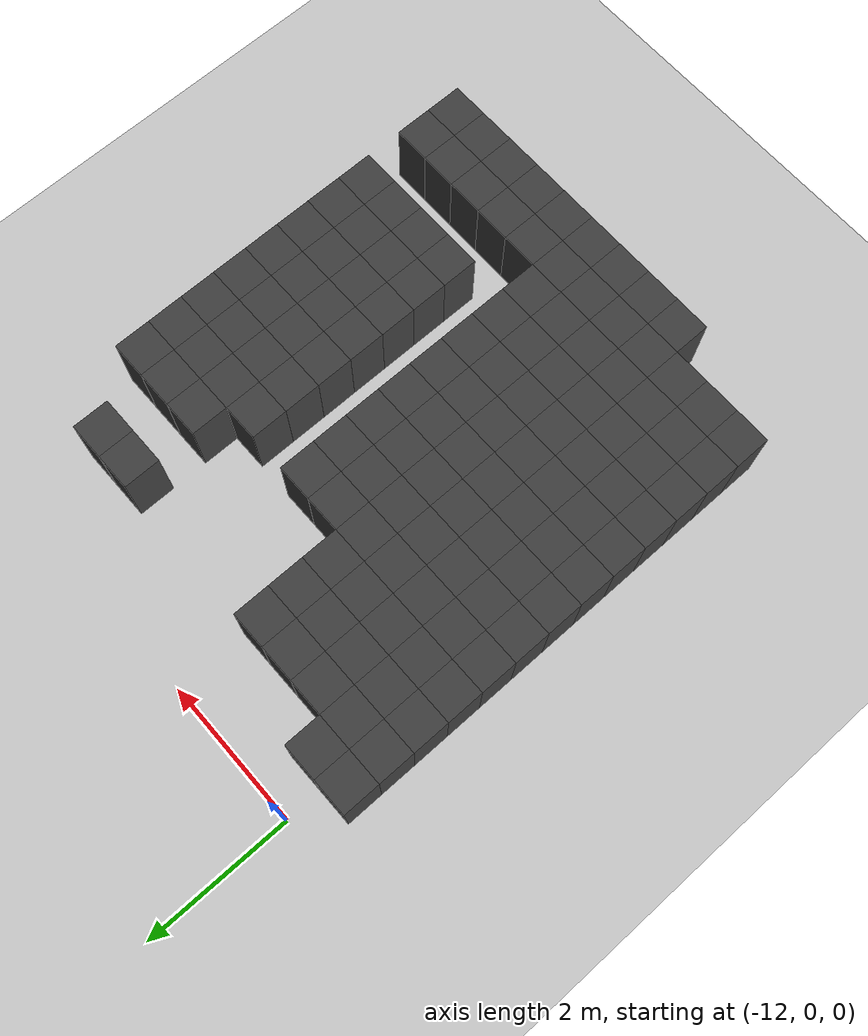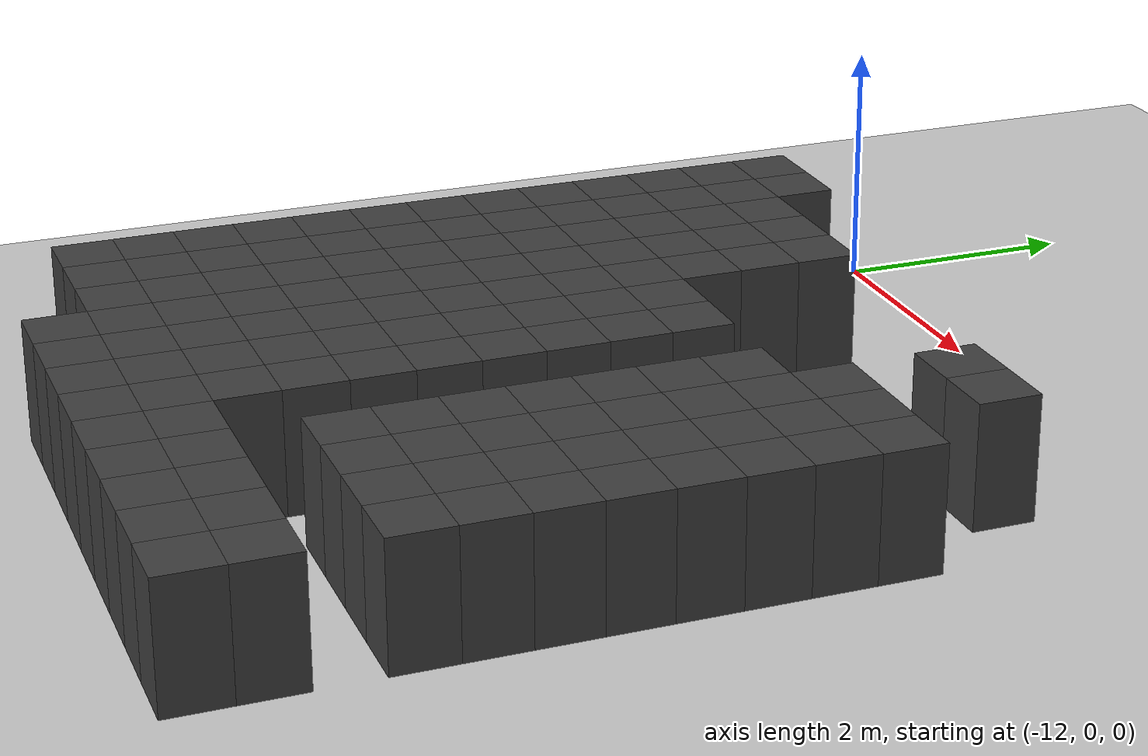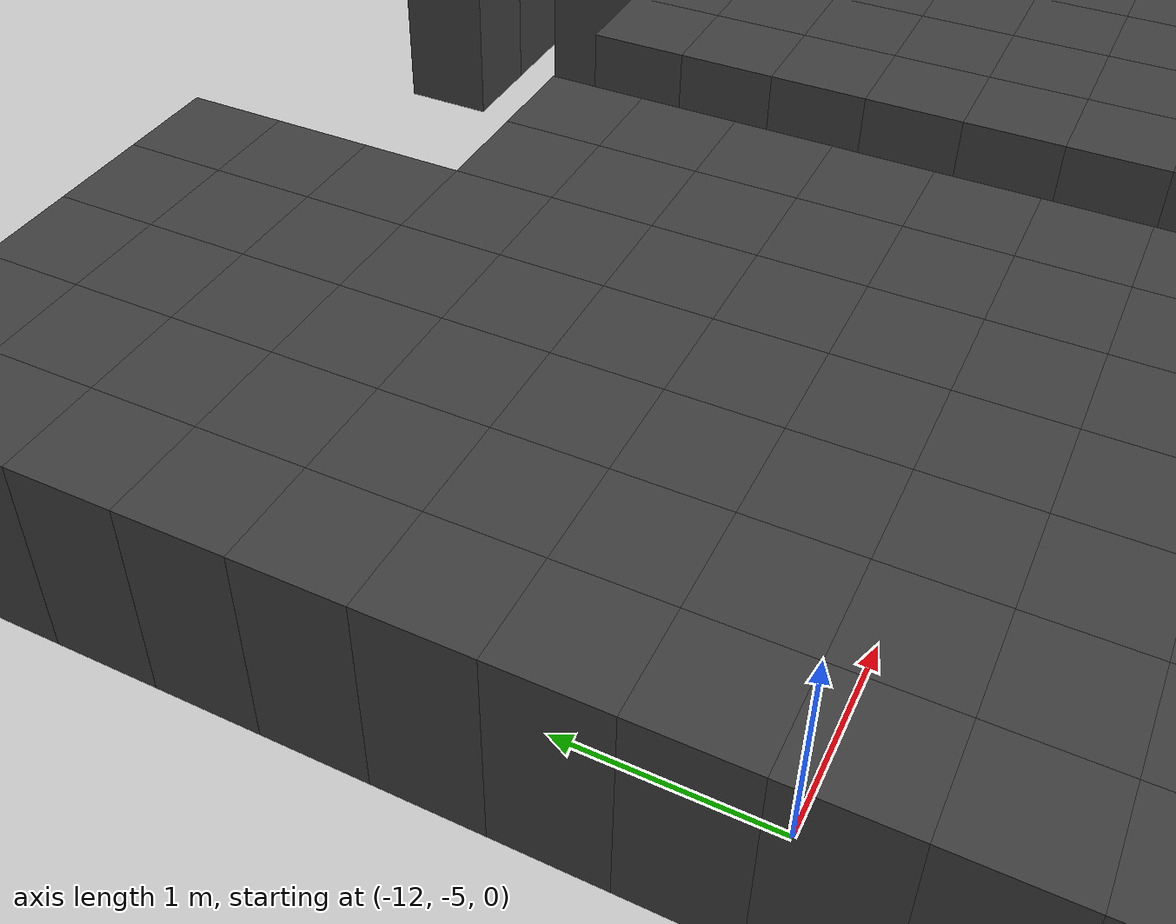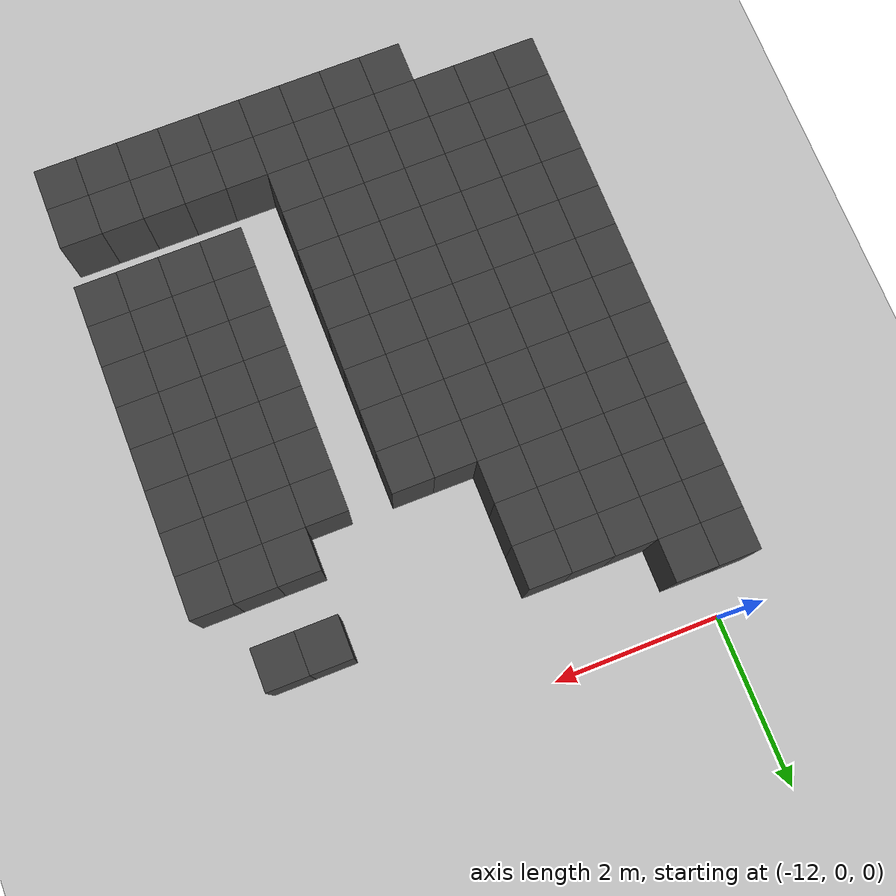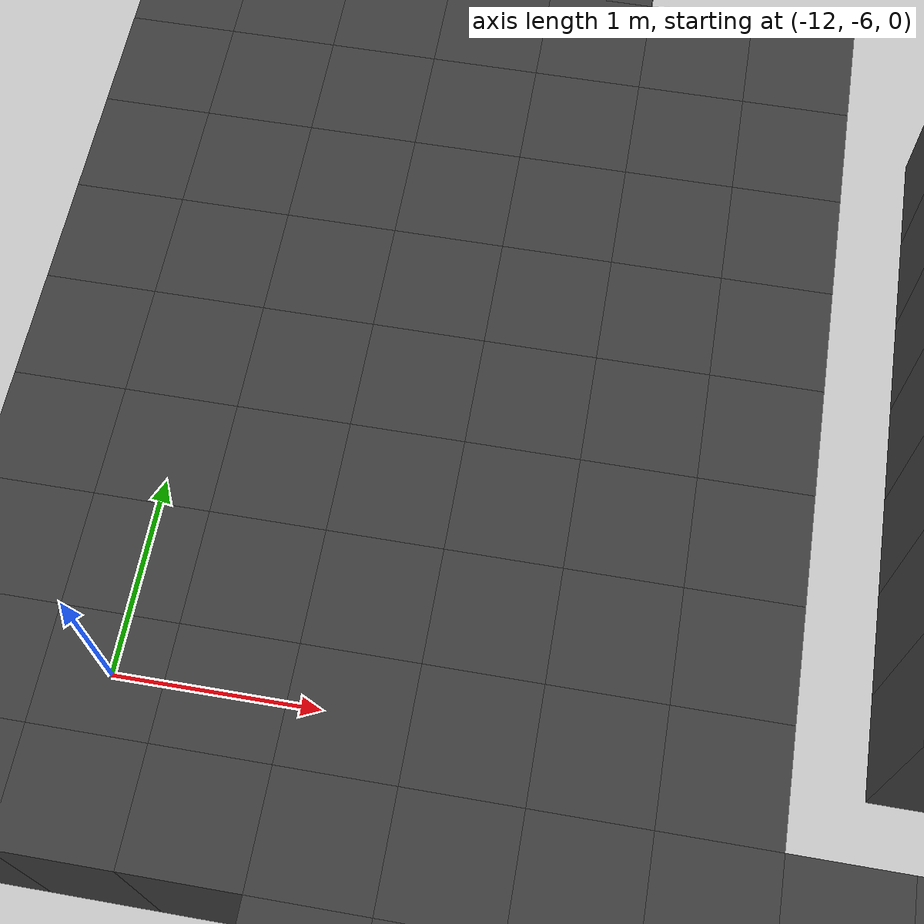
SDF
<sdf version="1.7">
 <world name="map_12356">
  <model name="ground_plane">
   <static>true</static>
   <link name="link">
    <collision name="collision">
     <geometry><plane><normal>0 0 1</normal><size>200 200</size></plane></geometry>
    </collision>
    <visual name="visual">
     <geometry><plane><normal>0 0 1</normal><size>200 200</size></plane></geometry>
     <material><ambient>0.8 0.8 0.8 1</ambient><diffuse>0.8 0.8 0.8 1</diffuse></material>
    </visual>
   </link>
  </model>
  <model name="maze_environment">
   <static>true</static>
   <link name="wall_1013">
    <pose>-12.250 -0.750 0.500 0 0 0</pose>
    <collision name="col"><geometry><box><size>0.5 0.5 1.0</size></box></geometry></collision>
    <visual name="vis">
     <geometry><box><size>0.5 0.5 1.0</size></box></geometry>
     <material><ambient>0.15 0.15 0.15 1</ambient><diffuse>0.25 0.25 0.25 1</diffuse></material>
    </visual>
   </link>
   <link name="wall_1014">
    <pose>-11.750 -0.750 0.500 0 0 0</pose>
    <collision name="col"><geometry><box><size>0.5 0.5 1.0</size></box></geometry></collision>
    <visual name="vis">
     <geometry><box><size>0.5 0.5 1.0</size></box></geometry>
     <material><ambient>0.15 0.15 0.15 1</ambient><diffuse>0.25 0.25 0.25 1</diffuse></material>
    </visual>
   </link>
   <link name="wall_1057">
    <pose>-12.250 -1.250 0.500 0 0 0</pose>
    <collision name="col"><geometry><box><size>0.5 0.5 1.0</size></box></geometry></collision>
    <visual name="vis">
     <geometry><box><size>0.5 0.5 1.0</size></box></geometry>
     <material><ambient>0.15 0.15 0.15 1</ambient><diffuse>0.25 0.25 0.25 1</diffuse></material>
    </visual>
   </link>
   <link name="wall_1058">
    <pose>-11.750 -1.250 0.500 0 0 0</pose>
    <collision name="col"><geometry><box><size>0.5 0.5 1.0</size></box></geometry></collision>
    <visual name="vis">
     <geometry><box><size>0.5 0.5 1.0</size></box></geometry>
     <material><ambient>0.15 0.15 0.15 1</ambient><diffuse>0.25 0.25 0.25 1</diffuse></material>
    </visual>
   </link>
   <link name="wall_1059">
    <pose>-11.250 -1.250 0.500 0 0 0</pose>
    <collision name="col"><geometry><box><size>0.5 0.5 1.0</size></box></geometry></collision>
    <visual name="vis">
     <geometry><box><size>0.5 0.5 1.0</size></box></geometry>
     <material><ambient>0.15 0.15 0.15 1</ambient><diffuse>0.25 0.25 0.25 1</diffuse></material>
    </visual>
   </link>
   <link name="wall_1060">
    <pose>-10.750 -1.250 0.500 0 0 0</pose>
    <collision name="col"><geometry><box><size>0.5 0.5 1.0</size></box></geometry></collision>
    <visual name="vis">
     <geometry><box><size>0.5 0.5 1.0</size></box></geometry>
     <material><ambient>0.15 0.15 0.15 1</ambient><diffuse>0.25 0.25 0.25 1</diffuse></material>
    </visual>
   </link>
   <link name="wall_1061">
    <pose>-10.250 -1.250 0.500 0 0 0</pose>
    <collision name="col"><geometry><box><size>0.5 0.5 1.0</size></box></geometry></collision>
    <visual name="vis">
     <geometry><box><size>0.5 0.5 1.0</size></box></geometry>
     <material><ambient>0.15 0.15 0.15 1</ambient><diffuse>0.25 0.25 0.25 1</diffuse></material>
    </visual>
   </link>
   <link name="wall_1062">
    <pose>-7.750 -1.250 0.500 0 0 0</pose>
    <collision name="col"><geometry><box><size>0.5 0.5 1.0</size></box></geometry></collision>
    <visual name="vis">
     <geometry><box><size>0.5 0.5 1.0</size></box></geometry>
     <material><ambient>0.15 0.15 0.15 1</ambient><diffuse>0.25 0.25 0.25 1</diffuse></material>
    </visual>
   </link>
   <link name="wall_1063">
    <pose>-7.250 -1.250 0.500 0 0 0</pose>
    <collision name="col"><geometry><box><size>0.5 0.5 1.0</size></box></geometry></collision>
    <visual name="vis">
     <geometry><box><size>0.5 0.5 1.0</size></box></geometry>
     <material><ambient>0.15 0.15 0.15 1</ambient><diffuse>0.25 0.25 0.25 1</diffuse></material>
    </visual>
   </link>
   <link name="wall_1101">
    <pose>-12.250 -1.750 0.500 0 0 0</pose>
    <collision name="col"><geometry><box><size>0.5 0.5 1.0</size></box></geometry></collision>
    <visual name="vis">
     <geometry><box><size>0.5 0.5 1.0</size></box></geometry>
     <material><ambient>0.15 0.15 0.15 1</ambient><diffuse>0.25 0.25 0.25 1</diffuse></material>
    </visual>
   </link>
   <link name="wall_1102">
    <pose>-11.750 -1.750 0.500 0 0 0</pose>
    <collision name="col"><geometry><box><size>0.5 0.5 1.0</size></box></geometry></collision>
    <visual name="vis">
     <geometry><box><size>0.5 0.5 1.0</size></box></geometry>
     <material><ambient>0.15 0.15 0.15 1</ambient><diffuse>0.25 0.25 0.25 1</diffuse></material>
    </visual>
   </link>
   <link name="wall_1103">
    <pose>-11.250 -1.750 0.500 0 0 0</pose>
    <collision name="col"><geometry><box><size>0.5 0.5 1.0</size></box></geometry></collision>
    <visual name="vis">
     <geometry><box><size>0.5 0.5 1.0</size></box></geometry>
     <material><ambient>0.15 0.15 0.15 1</ambient><diffuse>0.25 0.25 0.25 1</diffuse></material>
    </visual>
   </link>
   <link name="wall_1104">
    <pose>-10.750 -1.750 0.500 0 0 0</pose>
    <collision name="col"><geometry><box><size>0.5 0.5 1.0</size></box></geometry></collision>
    <visual name="vis">
     <geometry><box><size>0.5 0.5 1.0</size></box></geometry>
     <material><ambient>0.15 0.15 0.15 1</ambient><diffuse>0.25 0.25 0.25 1</diffuse></material>
    </visual>
   </link>
   <link name="wall_1105">
    <pose>-10.250 -1.750 0.500 0 0 0</pose>
    <collision name="col"><geometry><box><size>0.5 0.5 1.0</size></box></geometry></collision>
    <visual name="vis">
     <geometry><box><size>0.5 0.5 1.0</size></box></geometry>
     <material><ambient>0.15 0.15 0.15 1</ambient><diffuse>0.25 0.25 0.25 1</diffuse></material>
    </visual>
   </link>
   <link name="wall_1143">
    <pose>-12.250 -2.250 0.500 0 0 0</pose>
    <collision name="col"><geometry><box><size>0.5 0.5 1.0</size></box></geometry></collision>
    <visual name="vis">
     <geometry><box><size>0.5 0.5 1.0</size></box></geometry>
     <material><ambient>0.15 0.15 0.15 1</ambient><diffuse>0.25 0.25 0.25 1</diffuse></material>
    </visual>
   </link>
   <link name="wall_1144">
    <pose>-11.750 -2.250 0.500 0 0 0</pose>
    <collision name="col"><geometry><box><size>0.5 0.5 1.0</size></box></geometry></collision>
    <visual name="vis">
     <geometry><box><size>0.5 0.5 1.0</size></box></geometry>
     <material><ambient>0.15 0.15 0.15 1</ambient><diffuse>0.25 0.25 0.25 1</diffuse></material>
    </visual>
   </link>
   <link name="wall_1145">
    <pose>-11.250 -2.250 0.500 0 0 0</pose>
    <collision name="col"><geometry><box><size>0.5 0.5 1.0</size></box></geometry></collision>
    <visual name="vis">
     <geometry><box><size>0.5 0.5 1.0</size></box></geometry>
     <material><ambient>0.15 0.15 0.15 1</ambient><diffuse>0.25 0.25 0.25 1</diffuse></material>
    </visual>
   </link>
   <link name="wall_1146">
    <pose>-10.750 -2.250 0.500 0 0 0</pose>
    <collision name="col"><geometry><box><size>0.5 0.5 1.0</size></box></geometry></collision>
    <visual name="vis">
     <geometry><box><size>0.5 0.5 1.0</size></box></geometry>
     <material><ambient>0.15 0.15 0.15 1</ambient><diffuse>0.25 0.25 0.25 1</diffuse></material>
    </visual>
   </link>
   <link name="wall_1147">
    <pose>-10.250 -2.250 0.500 0 0 0</pose>
    <collision name="col"><geometry><box><size>0.5 0.5 1.0</size></box></geometry></collision>
    <visual name="vis">
     <geometry><box><size>0.5 0.5 1.0</size></box></geometry>
     <material><ambient>0.15 0.15 0.15 1</ambient><diffuse>0.25 0.25 0.25 1</diffuse></material>
    </visual>
   </link>
   <link name="wall_1148">
    <pose>-7.750 -2.250 0.500 0 0 0</pose>
    <collision name="col"><geometry><box><size>0.5 0.5 1.0</size></box></geometry></collision>
    <visual name="vis">
     <geometry><box><size>0.5 0.5 1.0</size></box></geometry>
     <material><ambient>0.15 0.15 0.15 1</ambient><diffuse>0.25 0.25 0.25 1</diffuse></material>
    </visual>
   </link>
   <link name="wall_1149">
    <pose>-7.250 -2.250 0.500 0 0 0</pose>
    <collision name="col"><geometry><box><size>0.5 0.5 1.0</size></box></geometry></collision>
    <visual name="vis">
     <geometry><box><size>0.5 0.5 1.0</size></box></geometry>
     <material><ambient>0.15 0.15 0.15 1</ambient><diffuse>0.25 0.25 0.25 1</diffuse></material>
    </visual>
   </link>
   <link name="wall_1150">
    <pose>-6.750 -2.250 0.500 0 0 0</pose>
    <collision name="col"><geometry><box><size>0.5 0.5 1.0</size></box></geometry></collision>
    <visual name="vis">
     <geometry><box><size>0.5 0.5 1.0</size></box></geometry>
     <material><ambient>0.15 0.15 0.15 1</ambient><diffuse>0.25 0.25 0.25 1</diffuse></material>
    </visual>
   </link>
   <link name="wall_1181">
    <pose>-12.250 -2.750 0.500 0 0 0</pose>
    <collision name="col"><geometry><box><size>0.5 0.5 1.0</size></box></geometry></collision>
    <visual name="vis">
     <geometry><box><size>0.5 0.5 1.0</size></box></geometry>
     <material><ambient>0.15 0.15 0.15 1</ambient><diffuse>0.25 0.25 0.25 1</diffuse></material>
    </visual>
   </link>
   <link name="wall_1182">
    <pose>-11.750 -2.750 0.500 0 0 0</pose>
    <collision name="col"><geometry><box><size>0.5 0.5 1.0</size></box></geometry></collision>
    <visual name="vis">
     <geometry><box><size>0.5 0.5 1.0</size></box></geometry>
     <material><ambient>0.15 0.15 0.15 1</ambient><diffuse>0.25 0.25 0.25 1</diffuse></material>
    </visual>
   </link>
   <link name="wall_1183">
    <pose>-11.250 -2.750 0.500 0 0 0</pose>
    <collision name="col"><geometry><box><size>0.5 0.5 1.0</size></box></geometry></collision>
    <visual name="vis">
     <geometry><box><size>0.5 0.5 1.0</size></box></geometry>
     <material><ambient>0.15 0.15 0.15 1</ambient><diffuse>0.25 0.25 0.25 1</diffuse></material>
    </visual>
   </link>
   <link name="wall_1184">
    <pose>-10.750 -2.750 0.500 0 0 0</pose>
    <collision name="col"><geometry><box><size>0.5 0.5 1.0</size></box></geometry></collision>
    <visual name="vis">
     <geometry><box><size>0.5 0.5 1.0</size></box></geometry>
     <material><ambient>0.15 0.15 0.15 1</ambient><diffuse>0.25 0.25 0.25 1</diffuse></material>
    </visual>
   </link>
   <link name="wall_1185">
    <pose>-10.250 -2.750 0.500 0 0 0</pose>
    <collision name="col"><geometry><box><size>0.5 0.5 1.0</size></box></geometry></collision>
    <visual name="vis">
     <geometry><box><size>0.5 0.5 1.0</size></box></geometry>
     <material><ambient>0.15 0.15 0.15 1</ambient><diffuse>0.25 0.25 0.25 1</diffuse></material>
    </visual>
   </link>
   <link name="wall_1186">
    <pose>-9.750 -2.750 0.500 0 0 0</pose>
    <collision name="col"><geometry><box><size>0.5 0.5 1.0</size></box></geometry></collision>
    <visual name="vis">
     <geometry><box><size>0.5 0.5 1.0</size></box></geometry>
     <material><ambient>0.15 0.15 0.15 1</ambient><diffuse>0.25 0.25 0.25 1</diffuse></material>
    </visual>
   </link>
   <link name="wall_1187">
    <pose>-9.250 -2.750 0.500 0 0 0</pose>
    <collision name="col"><geometry><box><size>0.5 0.5 1.0</size></box></geometry></collision>
    <visual name="vis">
     <geometry><box><size>0.5 0.5 1.0</size></box></geometry>
     <material><ambient>0.15 0.15 0.15 1</ambient><diffuse>0.25 0.25 0.25 1</diffuse></material>
    </visual>
   </link>
   <link name="wall_1188">
    <pose>-8.250 -2.750 0.500 0 0 0</pose>
    <collision name="col"><geometry><box><size>0.5 0.5 1.0</size></box></geometry></collision>
    <visual name="vis">
     <geometry><box><size>0.5 0.5 1.0</size></box></geometry>
     <material><ambient>0.15 0.15 0.15 1</ambient><diffuse>0.25 0.25 0.25 1</diffuse></material>
    </visual>
   </link>
   <link name="wall_1189">
    <pose>-7.750 -2.750 0.500 0 0 0</pose>
    <collision name="col"><geometry><box><size>0.5 0.5 1.0</size></box></geometry></collision>
    <visual name="vis">
     <geometry><box><size>0.5 0.5 1.0</size></box></geometry>
     <material><ambient>0.15 0.15 0.15 1</ambient><diffuse>0.25 0.25 0.25 1</diffuse></material>
    </visual>
   </link>
   <link name="wall_1190">
    <pose>-7.250 -2.750 0.500 0 0 0</pose>
    <collision name="col"><geometry><box><size>0.5 0.5 1.0</size></box></geometry></collision>
    <visual name="vis">
     <geometry><box><size>0.5 0.5 1.0</size></box></geometry>
     <material><ambient>0.15 0.15 0.15 1</ambient><diffuse>0.25 0.25 0.25 1</diffuse></material>
    </visual>
   </link>
   <link name="wall_1191">
    <pose>-6.750 -2.750 0.500 0 0 0</pose>
    <collision name="col"><geometry><box><size>0.5 0.5 1.0</size></box></geometry></collision>
    <visual name="vis">
     <geometry><box><size>0.5 0.5 1.0</size></box></geometry>
     <material><ambient>0.15 0.15 0.15 1</ambient><diffuse>0.25 0.25 0.25 1</diffuse></material>
    </visual>
   </link>
   <link name="wall_1222">
    <pose>-12.250 -3.250 0.500 0 0 0</pose>
    <collision name="col"><geometry><box><size>0.5 0.5 1.0</size></box></geometry></collision>
    <visual name="vis">
     <geometry><box><size>0.5 0.5 1.0</size></box></geometry>
     <material><ambient>0.15 0.15 0.15 1</ambient><diffuse>0.25 0.25 0.25 1</diffuse></material>
    </visual>
   </link>
   <link name="wall_1223">
    <pose>-11.750 -3.250 0.500 0 0 0</pose>
    <collision name="col"><geometry><box><size>0.5 0.5 1.0</size></box></geometry></collision>
    <visual name="vis">
     <geometry><box><size>0.5 0.5 1.0</size></box></geometry>
     <material><ambient>0.15 0.15 0.15 1</ambient><diffuse>0.25 0.25 0.25 1</diffuse></material>
    </visual>
   </link>
   <link name="wall_1224">
    <pose>-11.250 -3.250 0.500 0 0 0</pose>
    <collision name="col"><geometry><box><size>0.5 0.5 1.0</size></box></geometry></collision>
    <visual name="vis">
     <geometry><box><size>0.5 0.5 1.0</size></box></geometry>
     <material><ambient>0.15 0.15 0.15 1</ambient><diffuse>0.25 0.25 0.25 1</diffuse></material>
    </visual>
   </link>
   <link name="wall_1225">
    <pose>-10.750 -3.250 0.500 0 0 0</pose>
    <collision name="col"><geometry><box><size>0.5 0.5 1.0</size></box></geometry></collision>
    <visual name="vis">
     <geometry><box><size>0.5 0.5 1.0</size></box></geometry>
     <material><ambient>0.15 0.15 0.15 1</ambient><diffuse>0.25 0.25 0.25 1</diffuse></material>
    </visual>
   </link>
   <link name="wall_1226">
    <pose>-10.250 -3.250 0.500 0 0 0</pose>
    <collision name="col"><geometry><box><size>0.5 0.5 1.0</size></box></geometry></collision>
    <visual name="vis">
     <geometry><box><size>0.5 0.5 1.0</size></box></geometry>
     <material><ambient>0.15 0.15 0.15 1</ambient><diffuse>0.25 0.25 0.25 1</diffuse></material>
    </visual>
   </link>
   <link name="wall_1227">
    <pose>-9.750 -3.250 0.500 0 0 0</pose>
    <collision name="col"><geometry><box><size>0.5 0.5 1.0</size></box></geometry></collision>
    <visual name="vis">
     <geometry><box><size>0.5 0.5 1.0</size></box></geometry>
     <material><ambient>0.15 0.15 0.15 1</ambient><diffuse>0.25 0.25 0.25 1</diffuse></material>
    </visual>
   </link>
   <link name="wall_1228">
    <pose>-9.250 -3.250 0.500 0 0 0</pose>
    <collision name="col"><geometry><box><size>0.5 0.5 1.0</size></box></geometry></collision>
    <visual name="vis">
     <geometry><box><size>0.5 0.5 1.0</size></box></geometry>
     <material><ambient>0.15 0.15 0.15 1</ambient><diffuse>0.25 0.25 0.25 1</diffuse></material>
    </visual>
   </link>
   <link name="wall_1229">
    <pose>-8.250 -3.250 0.500 0 0 0</pose>
    <collision name="col"><geometry><box><size>0.5 0.5 1.0</size></box></geometry></collision>
    <visual name="vis">
     <geometry><box><size>0.5 0.5 1.0</size></box></geometry>
     <material><ambient>0.15 0.15 0.15 1</ambient><diffuse>0.25 0.25 0.25 1</diffuse></material>
    </visual>
   </link>
   <link name="wall_1230">
    <pose>-7.750 -3.250 0.500 0 0 0</pose>
    <collision name="col"><geometry><box><size>0.5 0.5 1.0</size></box></geometry></collision>
    <visual name="vis">
     <geometry><box><size>0.5 0.5 1.0</size></box></geometry>
     <material><ambient>0.15 0.15 0.15 1</ambient><diffuse>0.25 0.25 0.25 1</diffuse></material>
    </visual>
   </link>
   <link name="wall_1231">
    <pose>-7.250 -3.250 0.500 0 0 0</pose>
    <collision name="col"><geometry><box><size>0.5 0.5 1.0</size></box></geometry></collision>
    <visual name="vis">
     <geometry><box><size>0.5 0.5 1.0</size></box></geometry>
     <material><ambient>0.15 0.15 0.15 1</ambient><diffuse>0.25 0.25 0.25 1</diffuse></material>
    </visual>
   </link>
   <link name="wall_1232">
    <pose>-6.750 -3.250 0.500 0 0 0</pose>
    <collision name="col"><geometry><box><size>0.5 0.5 1.0</size></box></geometry></collision>
    <visual name="vis">
     <geometry><box><size>0.5 0.5 1.0</size></box></geometry>
     <material><ambient>0.15 0.15 0.15 1</ambient><diffuse>0.25 0.25 0.25 1</diffuse></material>
    </visual>
   </link>
   <link name="wall_1263">
    <pose>-12.250 -3.750 0.500 0 0 0</pose>
    <collision name="col"><geometry><box><size>0.5 0.5 1.0</size></box></geometry></collision>
    <visual name="vis">
     <geometry><box><size>0.5 0.5 1.0</size></box></geometry>
     <material><ambient>0.15 0.15 0.15 1</ambient><diffuse>0.25 0.25 0.25 1</diffuse></material>
    </visual>
   </link>
   <link name="wall_1264">
    <pose>-11.750 -3.750 0.500 0 0 0</pose>
    <collision name="col"><geometry><box><size>0.5 0.5 1.0</size></box></geometry></collision>
    <visual name="vis">
     <geometry><box><size>0.5 0.5 1.0</size></box></geometry>
     <material><ambient>0.15 0.15 0.15 1</ambient><diffuse>0.25 0.25 0.25 1</diffuse></material>
    </visual>
   </link>
   <link name="wall_1265">
    <pose>-11.250 -3.750 0.500 0 0 0</pose>
    <collision name="col"><geometry><box><size>0.5 0.5 1.0</size></box></geometry></collision>
    <visual name="vis">
     <geometry><box><size>0.5 0.5 1.0</size></box></geometry>
     <material><ambient>0.15 0.15 0.15 1</ambient><diffuse>0.25 0.25 0.25 1</diffuse></material>
    </visual>
   </link>
   <link name="wall_1266">
    <pose>-10.750 -3.750 0.500 0 0 0</pose>
    <collision name="col"><geometry><box><size>0.5 0.5 1.0</size></box></geometry></collision>
    <visual name="vis">
     <geometry><box><size>0.5 0.5 1.0</size></box></geometry>
     <material><ambient>0.15 0.15 0.15 1</ambient><diffuse>0.25 0.25 0.25 1</diffuse></material>
    </visual>
   </link>
   <link name="wall_1267">
    <pose>-10.250 -3.750 0.500 0 0 0</pose>
    <collision name="col"><geometry><box><size>0.5 0.5 1.0</size></box></geometry></collision>
    <visual name="vis">
     <geometry><box><size>0.5 0.5 1.0</size></box></geometry>
     <material><ambient>0.15 0.15 0.15 1</ambient><diffuse>0.25 0.25 0.25 1</diffuse></material>
    </visual>
   </link>
   <link name="wall_1268">
    <pose>-9.750 -3.750 0.500 0 0 0</pose>
    <collision name="col"><geometry><box><size>0.5 0.5 1.0</size></box></geometry></collision>
    <visual name="vis">
     <geometry><box><size>0.5 0.5 1.0</size></box></geometry>
     <material><ambient>0.15 0.15 0.15 1</ambient><diffuse>0.25 0.25 0.25 1</diffuse></material>
    </visual>
   </link>
   <link name="wall_1269">
    <pose>-9.250 -3.750 0.500 0 0 0</pose>
    <collision name="col"><geometry><box><size>0.5 0.5 1.0</size></box></geometry></collision>
    <visual name="vis">
     <geometry><box><size>0.5 0.5 1.0</size></box></geometry>
     <material><ambient>0.15 0.15 0.15 1</ambient><diffuse>0.25 0.25 0.25 1</diffuse></material>
    </visual>
   </link>
   <link name="wall_1270">
    <pose>-8.250 -3.750 0.500 0 0 0</pose>
    <collision name="col"><geometry><box><size>0.5 0.5 1.0</size></box></geometry></collision>
    <visual name="vis">
     <geometry><box><size>0.5 0.5 1.0</size></box></geometry>
     <material><ambient>0.15 0.15 0.15 1</ambient><diffuse>0.25 0.25 0.25 1</diffuse></material>
    </visual>
   </link>
   <link name="wall_1271">
    <pose>-7.750 -3.750 0.500 0 0 0</pose>
    <collision name="col"><geometry><box><size>0.5 0.5 1.0</size></box></geometry></collision>
    <visual name="vis">
     <geometry><box><size>0.5 0.5 1.0</size></box></geometry>
     <material><ambient>0.15 0.15 0.15 1</ambient><diffuse>0.25 0.25 0.25 1</diffuse></material>
    </visual>
   </link>
   <link name="wall_1272">
    <pose>-7.250 -3.750 0.500 0 0 0</pose>
    <collision name="col"><geometry><box><size>0.5 0.5 1.0</size></box></geometry></collision>
    <visual name="vis">
     <geometry><box><size>0.5 0.5 1.0</size></box></geometry>
     <material><ambient>0.15 0.15 0.15 1</ambient><diffuse>0.25 0.25 0.25 1</diffuse></material>
    </visual>
   </link>
   <link name="wall_1273">
    <pose>-6.750 -3.750 0.500 0 0 0</pose>
    <collision name="col"><geometry><box><size>0.5 0.5 1.0</size></box></geometry></collision>
    <visual name="vis">
     <geometry><box><size>0.5 0.5 1.0</size></box></geometry>
     <material><ambient>0.15 0.15 0.15 1</ambient><diffuse>0.25 0.25 0.25 1</diffuse></material>
    </visual>
   </link>
   <link name="wall_1299">
    <pose>-12.250 -4.250 0.500 0 0 0</pose>
    <collision name="col"><geometry><box><size>0.5 0.5 1.0</size></box></geometry></collision>
    <visual name="vis">
     <geometry><box><size>0.5 0.5 1.0</size></box></geometry>
     <material><ambient>0.15 0.15 0.15 1</ambient><diffuse>0.25 0.25 0.25 1</diffuse></material>
    </visual>
   </link>
   <link name="wall_1300">
    <pose>-11.750 -4.250 0.500 0 0 0</pose>
    <collision name="col"><geometry><box><size>0.5 0.5 1.0</size></box></geometry></collision>
    <visual name="vis">
     <geometry><box><size>0.5 0.5 1.0</size></box></geometry>
     <material><ambient>0.15 0.15 0.15 1</ambient><diffuse>0.25 0.25 0.25 1</diffuse></material>
    </visual>
   </link>
   <link name="wall_1301">
    <pose>-11.250 -4.250 0.500 0 0 0</pose>
    <collision name="col"><geometry><box><size>0.5 0.5 1.0</size></box></geometry></collision>
    <visual name="vis">
     <geometry><box><size>0.5 0.5 1.0</size></box></geometry>
     <material><ambient>0.15 0.15 0.15 1</ambient><diffuse>0.25 0.25 0.25 1</diffuse></material>
    </visual>
   </link>
   <link name="wall_1302">
    <pose>-10.750 -4.250 0.500 0 0 0</pose>
    <collision name="col"><geometry><box><size>0.5 0.5 1.0</size></box></geometry></collision>
    <visual name="vis">
     <geometry><box><size>0.5 0.5 1.0</size></box></geometry>
     <material><ambient>0.15 0.15 0.15 1</ambient><diffuse>0.25 0.25 0.25 1</diffuse></material>
    </visual>
   </link>
   <link name="wall_1303">
    <pose>-10.250 -4.250 0.500 0 0 0</pose>
    <collision name="col"><geometry><box><size>0.5 0.5 1.0</size></box></geometry></collision>
    <visual name="vis">
     <geometry><box><size>0.5 0.5 1.0</size></box></geometry>
     <material><ambient>0.15 0.15 0.15 1</ambient><diffuse>0.25 0.25 0.25 1</diffuse></material>
    </visual>
   </link>
   <link name="wall_1304">
    <pose>-9.750 -4.250 0.500 0 0 0</pose>
    <collision name="col"><geometry><box><size>0.5 0.5 1.0</size></box></geometry></collision>
    <visual name="vis">
     <geometry><box><size>0.5 0.5 1.0</size></box></geometry>
     <material><ambient>0.15 0.15 0.15 1</ambient><diffuse>0.25 0.25 0.25 1</diffuse></material>
    </visual>
   </link>
   <link name="wall_1305">
    <pose>-9.250 -4.250 0.500 0 0 0</pose>
    <collision name="col"><geometry><box><size>0.5 0.5 1.0</size></box></geometry></collision>
    <visual name="vis">
     <geometry><box><size>0.5 0.5 1.0</size></box></geometry>
     <material><ambient>0.15 0.15 0.15 1</ambient><diffuse>0.25 0.25 0.25 1</diffuse></material>
    </visual>
   </link>
   <link name="wall_1306">
    <pose>-8.250 -4.250 0.500 0 0 0</pose>
    <collision name="col"><geometry><box><size>0.5 0.5 1.0</size></box></geometry></collision>
    <visual name="vis">
     <geometry><box><size>0.5 0.5 1.0</size></box></geometry>
     <material><ambient>0.15 0.15 0.15 1</ambient><diffuse>0.25 0.25 0.25 1</diffuse></material>
    </visual>
   </link>
   <link name="wall_1307">
    <pose>-7.750 -4.250 0.500 0 0 0</pose>
    <collision name="col"><geometry><box><size>0.5 0.5 1.0</size></box></geometry></collision>
    <visual name="vis">
     <geometry><box><size>0.5 0.5 1.0</size></box></geometry>
     <material><ambient>0.15 0.15 0.15 1</ambient><diffuse>0.25 0.25 0.25 1</diffuse></material>
    </visual>
   </link>
   <link name="wall_1308">
    <pose>-7.250 -4.250 0.500 0 0 0</pose>
    <collision name="col"><geometry><box><size>0.5 0.5 1.0</size></box></geometry></collision>
    <visual name="vis">
     <geometry><box><size>0.5 0.5 1.0</size></box></geometry>
     <material><ambient>0.15 0.15 0.15 1</ambient><diffuse>0.25 0.25 0.25 1</diffuse></material>
    </visual>
   </link>
   <link name="wall_1309">
    <pose>-6.750 -4.250 0.500 0 0 0</pose>
    <collision name="col"><geometry><box><size>0.5 0.5 1.0</size></box></geometry></collision>
    <visual name="vis">
     <geometry><box><size>0.5 0.5 1.0</size></box></geometry>
     <material><ambient>0.15 0.15 0.15 1</ambient><diffuse>0.25 0.25 0.25 1</diffuse></material>
    </visual>
   </link>
   <link name="wall_1339">
    <pose>-12.250 -4.750 0.500 0 0 0</pose>
    <collision name="col"><geometry><box><size>0.5 0.5 1.0</size></box></geometry></collision>
    <visual name="vis">
     <geometry><box><size>0.5 0.5 1.0</size></box></geometry>
     <material><ambient>0.15 0.15 0.15 1</ambient><diffuse>0.25 0.25 0.25 1</diffuse></material>
    </visual>
   </link>
   <link name="wall_1340">
    <pose>-11.750 -4.750 0.500 0 0 0</pose>
    <collision name="col"><geometry><box><size>0.5 0.5 1.0</size></box></geometry></collision>
    <visual name="vis">
     <geometry><box><size>0.5 0.5 1.0</size></box></geometry>
     <material><ambient>0.15 0.15 0.15 1</ambient><diffuse>0.25 0.25 0.25 1</diffuse></material>
    </visual>
   </link>
   <link name="wall_1341">
    <pose>-11.250 -4.750 0.500 0 0 0</pose>
    <collision name="col"><geometry><box><size>0.5 0.5 1.0</size></box></geometry></collision>
    <visual name="vis">
     <geometry><box><size>0.5 0.5 1.0</size></box></geometry>
     <material><ambient>0.15 0.15 0.15 1</ambient><diffuse>0.25 0.25 0.25 1</diffuse></material>
    </visual>
   </link>
   <link name="wall_1342">
    <pose>-10.750 -4.750 0.500 0 0 0</pose>
    <collision name="col"><geometry><box><size>0.5 0.5 1.0</size></box></geometry></collision>
    <visual name="vis">
     <geometry><box><size>0.5 0.5 1.0</size></box></geometry>
     <material><ambient>0.15 0.15 0.15 1</ambient><diffuse>0.25 0.25 0.25 1</diffuse></material>
    </visual>
   </link>
   <link name="wall_1343">
    <pose>-10.250 -4.750 0.500 0 0 0</pose>
    <collision name="col"><geometry><box><size>0.5 0.5 1.0</size></box></geometry></collision>
    <visual name="vis">
     <geometry><box><size>0.5 0.5 1.0</size></box></geometry>
     <material><ambient>0.15 0.15 0.15 1</ambient><diffuse>0.25 0.25 0.25 1</diffuse></material>
    </visual>
   </link>
   <link name="wall_1344">
    <pose>-9.750 -4.750 0.500 0 0 0</pose>
    <collision name="col"><geometry><box><size>0.5 0.5 1.0</size></box></geometry></collision>
    <visual name="vis">
     <geometry><box><size>0.5 0.5 1.0</size></box></geometry>
     <material><ambient>0.15 0.15 0.15 1</ambient><diffuse>0.25 0.25 0.25 1</diffuse></material>
    </visual>
   </link>
   <link name="wall_1345">
    <pose>-9.250 -4.750 0.500 0 0 0</pose>
    <collision name="col"><geometry><box><size>0.5 0.5 1.0</size></box></geometry></collision>
    <visual name="vis">
     <geometry><box><size>0.5 0.5 1.0</size></box></geometry>
     <material><ambient>0.15 0.15 0.15 1</ambient><diffuse>0.25 0.25 0.25 1</diffuse></material>
    </visual>
   </link>
   <link name="wall_1346">
    <pose>-8.250 -4.750 0.500 0 0 0</pose>
    <collision name="col"><geometry><box><size>0.5 0.5 1.0</size></box></geometry></collision>
    <visual name="vis">
     <geometry><box><size>0.5 0.5 1.0</size></box></geometry>
     <material><ambient>0.15 0.15 0.15 1</ambient><diffuse>0.25 0.25 0.25 1</diffuse></material>
    </visual>
   </link>
   <link name="wall_1347">
    <pose>-7.750 -4.750 0.500 0 0 0</pose>
    <collision name="col"><geometry><box><size>0.5 0.5 1.0</size></box></geometry></collision>
    <visual name="vis">
     <geometry><box><size>0.5 0.5 1.0</size></box></geometry>
     <material><ambient>0.15 0.15 0.15 1</ambient><diffuse>0.25 0.25 0.25 1</diffuse></material>
    </visual>
   </link>
   <link name="wall_1348">
    <pose>-7.250 -4.750 0.500 0 0 0</pose>
    <collision name="col"><geometry><box><size>0.5 0.5 1.0</size></box></geometry></collision>
    <visual name="vis">
     <geometry><box><size>0.5 0.5 1.0</size></box></geometry>
     <material><ambient>0.15 0.15 0.15 1</ambient><diffuse>0.25 0.25 0.25 1</diffuse></material>
    </visual>
   </link>
   <link name="wall_1349">
    <pose>-6.750 -4.750 0.500 0 0 0</pose>
    <collision name="col"><geometry><box><size>0.5 0.5 1.0</size></box></geometry></collision>
    <visual name="vis">
     <geometry><box><size>0.5 0.5 1.0</size></box></geometry>
     <material><ambient>0.15 0.15 0.15 1</ambient><diffuse>0.25 0.25 0.25 1</diffuse></material>
    </visual>
   </link>
   <link name="wall_1372">
    <pose>-12.250 -5.250 0.500 0 0 0</pose>
    <collision name="col"><geometry><box><size>0.5 0.5 1.0</size></box></geometry></collision>
    <visual name="vis">
     <geometry><box><size>0.5 0.5 1.0</size></box></geometry>
     <material><ambient>0.15 0.15 0.15 1</ambient><diffuse>0.25 0.25 0.25 1</diffuse></material>
    </visual>
   </link>
   <link name="wall_1373">
    <pose>-11.750 -5.250 0.500 0 0 0</pose>
    <collision name="col"><geometry><box><size>0.5 0.5 1.0</size></box></geometry></collision>
    <visual name="vis">
     <geometry><box><size>0.5 0.5 1.0</size></box></geometry>
     <material><ambient>0.15 0.15 0.15 1</ambient><diffuse>0.25 0.25 0.25 1</diffuse></material>
    </visual>
   </link>
   <link name="wall_1374">
    <pose>-11.250 -5.250 0.500 0 0 0</pose>
    <collision name="col"><geometry><box><size>0.5 0.5 1.0</size></box></geometry></collision>
    <visual name="vis">
     <geometry><box><size>0.5 0.5 1.0</size></box></geometry>
     <material><ambient>0.15 0.15 0.15 1</ambient><diffuse>0.25 0.25 0.25 1</diffuse></material>
    </visual>
   </link>
   <link name="wall_1375">
    <pose>-10.750 -5.250 0.500 0 0 0</pose>
    <collision name="col"><geometry><box><size>0.5 0.5 1.0</size></box></geometry></collision>
    <visual name="vis">
     <geometry><box><size>0.5 0.5 1.0</size></box></geometry>
     <material><ambient>0.15 0.15 0.15 1</ambient><diffuse>0.25 0.25 0.25 1</diffuse></material>
    </visual>
   </link>
   <link name="wall_1376">
    <pose>-10.250 -5.250 0.500 0 0 0</pose>
    <collision name="col"><geometry><box><size>0.5 0.5 1.0</size></box></geometry></collision>
    <visual name="vis">
     <geometry><box><size>0.5 0.5 1.0</size></box></geometry>
     <material><ambient>0.15 0.15 0.15 1</ambient><diffuse>0.25 0.25 0.25 1</diffuse></material>
    </visual>
   </link>
   <link name="wall_1377">
    <pose>-9.750 -5.250 0.500 0 0 0</pose>
    <collision name="col"><geometry><box><size>0.5 0.5 1.0</size></box></geometry></collision>
    <visual name="vis">
     <geometry><box><size>0.5 0.5 1.0</size></box></geometry>
     <material><ambient>0.15 0.15 0.15 1</ambient><diffuse>0.25 0.25 0.25 1</diffuse></material>
    </visual>
   </link>
   <link name="wall_1378">
    <pose>-9.250 -5.250 0.500 0 0 0</pose>
    <collision name="col"><geometry><box><size>0.5 0.5 1.0</size></box></geometry></collision>
    <visual name="vis">
     <geometry><box><size>0.5 0.5 1.0</size></box></geometry>
     <material><ambient>0.15 0.15 0.15 1</ambient><diffuse>0.25 0.25 0.25 1</diffuse></material>
    </visual>
   </link>
   <link name="wall_1379">
    <pose>-8.250 -5.250 0.500 0 0 0</pose>
    <collision name="col"><geometry><box><size>0.5 0.5 1.0</size></box></geometry></collision>
    <visual name="vis">
     <geometry><box><size>0.5 0.5 1.0</size></box></geometry>
     <material><ambient>0.15 0.15 0.15 1</ambient><diffuse>0.25 0.25 0.25 1</diffuse></material>
    </visual>
   </link>
   <link name="wall_1380">
    <pose>-7.750 -5.250 0.500 0 0 0</pose>
    <collision name="col"><geometry><box><size>0.5 0.5 1.0</size></box></geometry></collision>
    <visual name="vis">
     <geometry><box><size>0.5 0.5 1.0</size></box></geometry>
     <material><ambient>0.15 0.15 0.15 1</ambient><diffuse>0.25 0.25 0.25 1</diffuse></material>
    </visual>
   </link>
   <link name="wall_1381">
    <pose>-7.250 -5.250 0.500 0 0 0</pose>
    <collision name="col"><geometry><box><size>0.5 0.5 1.0</size></box></geometry></collision>
    <visual name="vis">
     <geometry><box><size>0.5 0.5 1.0</size></box></geometry>
     <material><ambient>0.15 0.15 0.15 1</ambient><diffuse>0.25 0.25 0.25 1</diffuse></material>
    </visual>
   </link>
   <link name="wall_1382">
    <pose>-6.750 -5.250 0.500 0 0 0</pose>
    <collision name="col"><geometry><box><size>0.5 0.5 1.0</size></box></geometry></collision>
    <visual name="vis">
     <geometry><box><size>0.5 0.5 1.0</size></box></geometry>
     <material><ambient>0.15 0.15 0.15 1</ambient><diffuse>0.25 0.25 0.25 1</diffuse></material>
    </visual>
   </link>
   <link name="wall_1405">
    <pose>-12.250 -5.750 0.500 0 0 0</pose>
    <collision name="col"><geometry><box><size>0.5 0.5 1.0</size></box></geometry></collision>
    <visual name="vis">
     <geometry><box><size>0.5 0.5 1.0</size></box></geometry>
     <material><ambient>0.15 0.15 0.15 1</ambient><diffuse>0.25 0.25 0.25 1</diffuse></material>
    </visual>
   </link>
   <link name="wall_1406">
    <pose>-11.750 -5.750 0.500 0 0 0</pose>
    <collision name="col"><geometry><box><size>0.5 0.5 1.0</size></box></geometry></collision>
    <visual name="vis">
     <geometry><box><size>0.5 0.5 1.0</size></box></geometry>
     <material><ambient>0.15 0.15 0.15 1</ambient><diffuse>0.25 0.25 0.25 1</diffuse></material>
    </visual>
   </link>
   <link name="wall_1407">
    <pose>-11.250 -5.750 0.500 0 0 0</pose>
    <collision name="col"><geometry><box><size>0.5 0.5 1.0</size></box></geometry></collision>
    <visual name="vis">
     <geometry><box><size>0.5 0.5 1.0</size></box></geometry>
     <material><ambient>0.15 0.15 0.15 1</ambient><diffuse>0.25 0.25 0.25 1</diffuse></material>
    </visual>
   </link>
   <link name="wall_1408">
    <pose>-10.750 -5.750 0.500 0 0 0</pose>
    <collision name="col"><geometry><box><size>0.5 0.5 1.0</size></box></geometry></collision>
    <visual name="vis">
     <geometry><box><size>0.5 0.5 1.0</size></box></geometry>
     <material><ambient>0.15 0.15 0.15 1</ambient><diffuse>0.25 0.25 0.25 1</diffuse></material>
    </visual>
   </link>
   <link name="wall_1409">
    <pose>-10.250 -5.750 0.500 0 0 0</pose>
    <collision name="col"><geometry><box><size>0.5 0.5 1.0</size></box></geometry></collision>
    <visual name="vis">
     <geometry><box><size>0.5 0.5 1.0</size></box></geometry>
     <material><ambient>0.15 0.15 0.15 1</ambient><diffuse>0.25 0.25 0.25 1</diffuse></material>
    </visual>
   </link>
   <link name="wall_1410">
    <pose>-9.750 -5.750 0.500 0 0 0</pose>
    <collision name="col"><geometry><box><size>0.5 0.5 1.0</size></box></geometry></collision>
    <visual name="vis">
     <geometry><box><size>0.5 0.5 1.0</size></box></geometry>
     <material><ambient>0.15 0.15 0.15 1</ambient><diffuse>0.25 0.25 0.25 1</diffuse></material>
    </visual>
   </link>
   <link name="wall_1411">
    <pose>-9.250 -5.750 0.500 0 0 0</pose>
    <collision name="col"><geometry><box><size>0.5 0.5 1.0</size></box></geometry></collision>
    <visual name="vis">
     <geometry><box><size>0.5 0.5 1.0</size></box></geometry>
     <material><ambient>0.15 0.15 0.15 1</ambient><diffuse>0.25 0.25 0.25 1</diffuse></material>
    </visual>
   </link>
   <link name="wall_1412">
    <pose>-8.250 -5.750 0.500 0 0 0</pose>
    <collision name="col"><geometry><box><size>0.5 0.5 1.0</size></box></geometry></collision>
    <visual name="vis">
     <geometry><box><size>0.5 0.5 1.0</size></box></geometry>
     <material><ambient>0.15 0.15 0.15 1</ambient><diffuse>0.25 0.25 0.25 1</diffuse></material>
    </visual>
   </link>
   <link name="wall_1413">
    <pose>-7.750 -5.750 0.500 0 0 0</pose>
    <collision name="col"><geometry><box><size>0.5 0.5 1.0</size></box></geometry></collision>
    <visual name="vis">
     <geometry><box><size>0.5 0.5 1.0</size></box></geometry>
     <material><ambient>0.15 0.15 0.15 1</ambient><diffuse>0.25 0.25 0.25 1</diffuse></material>
    </visual>
   </link>
   <link name="wall_1414">
    <pose>-7.250 -5.750 0.500 0 0 0</pose>
    <collision name="col"><geometry><box><size>0.5 0.5 1.0</size></box></geometry></collision>
    <visual name="vis">
     <geometry><box><size>0.5 0.5 1.0</size></box></geometry>
     <material><ambient>0.15 0.15 0.15 1</ambient><diffuse>0.25 0.25 0.25 1</diffuse></material>
    </visual>
   </link>
   <link name="wall_1415">
    <pose>-6.750 -5.750 0.500 0 0 0</pose>
    <collision name="col"><geometry><box><size>0.5 0.5 1.0</size></box></geometry></collision>
    <visual name="vis">
     <geometry><box><size>0.5 0.5 1.0</size></box></geometry>
     <material><ambient>0.15 0.15 0.15 1</ambient><diffuse>0.25 0.25 0.25 1</diffuse></material>
    </visual>
   </link>
   <link name="wall_1445">
    <pose>-12.250 -6.250 0.500 0 0 0</pose>
    <collision name="col"><geometry><box><size>0.5 0.5 1.0</size></box></geometry></collision>
    <visual name="vis">
     <geometry><box><size>0.5 0.5 1.0</size></box></geometry>
     <material><ambient>0.15 0.15 0.15 1</ambient><diffuse>0.25 0.25 0.25 1</diffuse></material>
    </visual>
   </link>
   <link name="wall_1446">
    <pose>-11.750 -6.250 0.500 0 0 0</pose>
    <collision name="col"><geometry><box><size>0.5 0.5 1.0</size></box></geometry></collision>
    <visual name="vis">
     <geometry><box><size>0.5 0.5 1.0</size></box></geometry>
     <material><ambient>0.15 0.15 0.15 1</ambient><diffuse>0.25 0.25 0.25 1</diffuse></material>
    </visual>
   </link>
   <link name="wall_1447">
    <pose>-11.250 -6.250 0.500 0 0 0</pose>
    <collision name="col"><geometry><box><size>0.5 0.5 1.0</size></box></geometry></collision>
    <visual name="vis">
     <geometry><box><size>0.5 0.5 1.0</size></box></geometry>
     <material><ambient>0.15 0.15 0.15 1</ambient><diffuse>0.25 0.25 0.25 1</diffuse></material>
    </visual>
   </link>
   <link name="wall_1448">
    <pose>-10.750 -6.250 0.500 0 0 0</pose>
    <collision name="col"><geometry><box><size>0.5 0.5 1.0</size></box></geometry></collision>
    <visual name="vis">
     <geometry><box><size>0.5 0.5 1.0</size></box></geometry>
     <material><ambient>0.15 0.15 0.15 1</ambient><diffuse>0.25 0.25 0.25 1</diffuse></material>
    </visual>
   </link>
   <link name="wall_1449">
    <pose>-10.250 -6.250 0.500 0 0 0</pose>
    <collision name="col"><geometry><box><size>0.5 0.5 1.0</size></box></geometry></collision>
    <visual name="vis">
     <geometry><box><size>0.5 0.5 1.0</size></box></geometry>
     <material><ambient>0.15 0.15 0.15 1</ambient><diffuse>0.25 0.25 0.25 1</diffuse></material>
    </visual>
   </link>
   <link name="wall_1450">
    <pose>-9.750 -6.250 0.500 0 0 0</pose>
    <collision name="col"><geometry><box><size>0.5 0.5 1.0</size></box></geometry></collision>
    <visual name="vis">
     <geometry><box><size>0.5 0.5 1.0</size></box></geometry>
     <material><ambient>0.15 0.15 0.15 1</ambient><diffuse>0.25 0.25 0.25 1</diffuse></material>
    </visual>
   </link>
   <link name="wall_1451">
    <pose>-9.250 -6.250 0.500 0 0 0</pose>
    <collision name="col"><geometry><box><size>0.5 0.5 1.0</size></box></geometry></collision>
    <visual name="vis">
     <geometry><box><size>0.5 0.5 1.0</size></box></geometry>
     <material><ambient>0.15 0.15 0.15 1</ambient><diffuse>0.25 0.25 0.25 1</diffuse></material>
    </visual>
   </link>
   <link name="wall_1481">
    <pose>-12.250 -6.750 0.500 0 0 0</pose>
    <collision name="col"><geometry><box><size>0.5 0.5 1.0</size></box></geometry></collision>
    <visual name="vis">
     <geometry><box><size>0.5 0.5 1.0</size></box></geometry>
     <material><ambient>0.15 0.15 0.15 1</ambient><diffuse>0.25 0.25 0.25 1</diffuse></material>
    </visual>
   </link>
   <link name="wall_1482">
    <pose>-11.750 -6.750 0.500 0 0 0</pose>
    <collision name="col"><geometry><box><size>0.5 0.5 1.0</size></box></geometry></collision>
    <visual name="vis">
     <geometry><box><size>0.5 0.5 1.0</size></box></geometry>
     <material><ambient>0.15 0.15 0.15 1</ambient><diffuse>0.25 0.25 0.25 1</diffuse></material>
    </visual>
   </link>
   <link name="wall_1483">
    <pose>-11.250 -6.750 0.500 0 0 0</pose>
    <collision name="col"><geometry><box><size>0.5 0.5 1.0</size></box></geometry></collision>
    <visual name="vis">
     <geometry><box><size>0.5 0.5 1.0</size></box></geometry>
     <material><ambient>0.15 0.15 0.15 1</ambient><diffuse>0.25 0.25 0.25 1</diffuse></material>
    </visual>
   </link>
   <link name="wall_1484">
    <pose>-10.750 -6.750 0.500 0 0 0</pose>
    <collision name="col"><geometry><box><size>0.5 0.5 1.0</size></box></geometry></collision>
    <visual name="vis">
     <geometry><box><size>0.5 0.5 1.0</size></box></geometry>
     <material><ambient>0.15 0.15 0.15 1</ambient><diffuse>0.25 0.25 0.25 1</diffuse></material>
    </visual>
   </link>
   <link name="wall_1485">
    <pose>-10.250 -6.750 0.500 0 0 0</pose>
    <collision name="col"><geometry><box><size>0.5 0.5 1.0</size></box></geometry></collision>
    <visual name="vis">
     <geometry><box><size>0.5 0.5 1.0</size></box></geometry>
     <material><ambient>0.15 0.15 0.15 1</ambient><diffuse>0.25 0.25 0.25 1</diffuse></material>
    </visual>
   </link>
   <link name="wall_1486">
    <pose>-9.750 -6.750 0.500 0 0 0</pose>
    <collision name="col"><geometry><box><size>0.5 0.5 1.0</size></box></geometry></collision>
    <visual name="vis">
     <geometry><box><size>0.5 0.5 1.0</size></box></geometry>
     <material><ambient>0.15 0.15 0.15 1</ambient><diffuse>0.25 0.25 0.25 1</diffuse></material>
    </visual>
   </link>
   <link name="wall_1487">
    <pose>-9.250 -6.750 0.500 0 0 0</pose>
    <collision name="col"><geometry><box><size>0.5 0.5 1.0</size></box></geometry></collision>
    <visual name="vis">
     <geometry><box><size>0.5 0.5 1.0</size></box></geometry>
     <material><ambient>0.15 0.15 0.15 1</ambient><diffuse>0.25 0.25 0.25 1</diffuse></material>
    </visual>
   </link>
   <link name="wall_1488">
    <pose>-8.750 -6.750 0.500 0 0 0</pose>
    <collision name="col"><geometry><box><size>0.5 0.5 1.0</size></box></geometry></collision>
    <visual name="vis">
     <geometry><box><size>0.5 0.5 1.0</size></box></geometry>
     <material><ambient>0.15 0.15 0.15 1</ambient><diffuse>0.25 0.25 0.25 1</diffuse></material>
    </visual>
   </link>
   <link name="wall_1489">
    <pose>-8.250 -6.750 0.500 0 0 0</pose>
    <collision name="col"><geometry><box><size>0.5 0.5 1.0</size></box></geometry></collision>
    <visual name="vis">
     <geometry><box><size>0.5 0.5 1.0</size></box></geometry>
     <material><ambient>0.15 0.15 0.15 1</ambient><diffuse>0.25 0.25 0.25 1</diffuse></material>
    </visual>
   </link>
   <link name="wall_1490">
    <pose>-7.750 -6.750 0.500 0 0 0</pose>
    <collision name="col"><geometry><box><size>0.5 0.5 1.0</size></box></geometry></collision>
    <visual name="vis">
     <geometry><box><size>0.5 0.5 1.0</size></box></geometry>
     <material><ambient>0.15 0.15 0.15 1</ambient><diffuse>0.25 0.25 0.25 1</diffuse></material>
    </visual>
   </link>
   <link name="wall_1491">
    <pose>-7.250 -6.750 0.500 0 0 0</pose>
    <collision name="col"><geometry><box><size>0.5 0.5 1.0</size></box></geometry></collision>
    <visual name="vis">
     <geometry><box><size>0.5 0.5 1.0</size></box></geometry>
     <material><ambient>0.15 0.15 0.15 1</ambient><diffuse>0.25 0.25 0.25 1</diffuse></material>
    </visual>
   </link>
   <link name="wall_1492">
    <pose>-6.750 -6.750 0.500 0 0 0</pose>
    <collision name="col"><geometry><box><size>0.5 0.5 1.0</size></box></geometry></collision>
    <visual name="vis">
     <geometry><box><size>0.5 0.5 1.0</size></box></geometry>
     <material><ambient>0.15 0.15 0.15 1</ambient><diffuse>0.25 0.25 0.25 1</diffuse></material>
    </visual>
   </link>
   <link name="wall_1525">
    <pose>-10.750 -7.250 0.500 0 0 0</pose>
    <collision name="col"><geometry><box><size>0.5 0.5 1.0</size></box></geometry></collision>
    <visual name="vis">
     <geometry><box><size>0.5 0.5 1.0</size></box></geometry>
     <material><ambient>0.15 0.15 0.15 1</ambient><diffuse>0.25 0.25 0.25 1</diffuse></material>
    </visual>
   </link>
   <link name="wall_1526">
    <pose>-10.250 -7.250 0.500 0 0 0</pose>
    <collision name="col"><geometry><box><size>0.5 0.5 1.0</size></box></geometry></collision>
    <visual name="vis">
     <geometry><box><size>0.5 0.5 1.0</size></box></geometry>
     <material><ambient>0.15 0.15 0.15 1</ambient><diffuse>0.25 0.25 0.25 1</diffuse></material>
    </visual>
   </link>
   <link name="wall_1527">
    <pose>-9.750 -7.250 0.500 0 0 0</pose>
    <collision name="col"><geometry><box><size>0.5 0.5 1.0</size></box></geometry></collision>
    <visual name="vis">
     <geometry><box><size>0.5 0.5 1.0</size></box></geometry>
     <material><ambient>0.15 0.15 0.15 1</ambient><diffuse>0.25 0.25 0.25 1</diffuse></material>
    </visual>
   </link>
   <link name="wall_1528">
    <pose>-9.250 -7.250 0.500 0 0 0</pose>
    <collision name="col"><geometry><box><size>0.5 0.5 1.0</size></box></geometry></collision>
    <visual name="vis">
     <geometry><box><size>0.5 0.5 1.0</size></box></geometry>
     <material><ambient>0.15 0.15 0.15 1</ambient><diffuse>0.25 0.25 0.25 1</diffuse></material>
    </visual>
   </link>
   <link name="wall_1529">
    <pose>-8.750 -7.250 0.500 0 0 0</pose>
    <collision name="col"><geometry><box><size>0.5 0.5 1.0</size></box></geometry></collision>
    <visual name="vis">
     <geometry><box><size>0.5 0.5 1.0</size></box></geometry>
     <material><ambient>0.15 0.15 0.15 1</ambient><diffuse>0.25 0.25 0.25 1</diffuse></material>
    </visual>
   </link>
   <link name="wall_1530">
    <pose>-8.250 -7.250 0.500 0 0 0</pose>
    <collision name="col"><geometry><box><size>0.5 0.5 1.0</size></box></geometry></collision>
    <visual name="vis">
     <geometry><box><size>0.5 0.5 1.0</size></box></geometry>
     <material><ambient>0.15 0.15 0.15 1</ambient><diffuse>0.25 0.25 0.25 1</diffuse></material>
    </visual>
   </link>
   <link name="wall_1531">
    <pose>-7.750 -7.250 0.500 0 0 0</pose>
    <collision name="col"><geometry><box><size>0.5 0.5 1.0</size></box></geometry></collision>
    <visual name="vis">
     <geometry><box><size>0.5 0.5 1.0</size></box></geometry>
     <material><ambient>0.15 0.15 0.15 1</ambient><diffuse>0.25 0.25 0.25 1</diffuse></material>
    </visual>
   </link>
   <link name="wall_1532">
    <pose>-7.250 -7.250 0.500 0 0 0</pose>
    <collision name="col"><geometry><box><size>0.5 0.5 1.0</size></box></geometry></collision>
    <visual name="vis">
     <geometry><box><size>0.5 0.5 1.0</size></box></geometry>
     <material><ambient>0.15 0.15 0.15 1</ambient><diffuse>0.25 0.25 0.25 1</diffuse></material>
    </visual>
   </link>
   <link name="wall_1533">
    <pose>-6.750 -7.250 0.500 0 0 0</pose>
    <collision name="col"><geometry><box><size>0.5 0.5 1.0</size></box></geometry></collision>
    <visual name="vis">
     <geometry><box><size>0.5 0.5 1.0</size></box></geometry>
     <material><ambient>0.15 0.15 0.15 1</ambient><diffuse>0.25 0.25 0.25 1</diffuse></material>
    </visual>
   </link>
  </model>
 </world>
</sdf>
